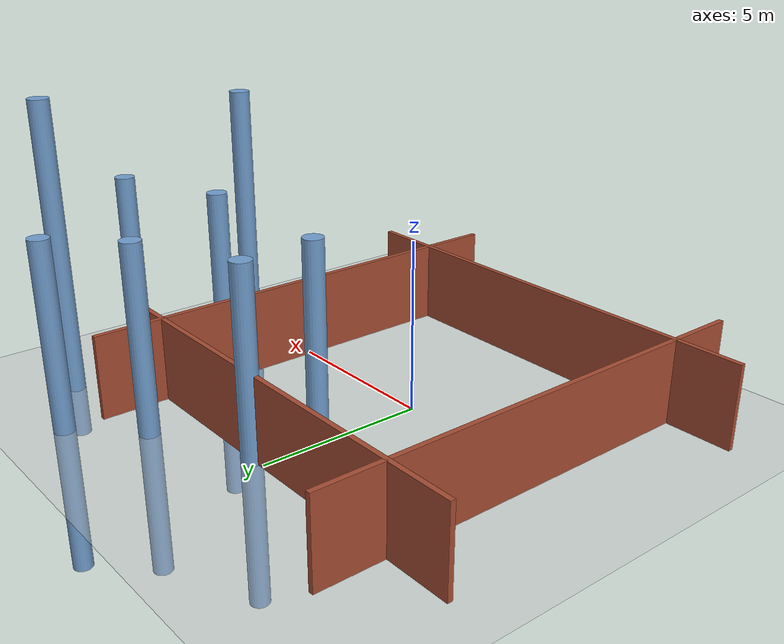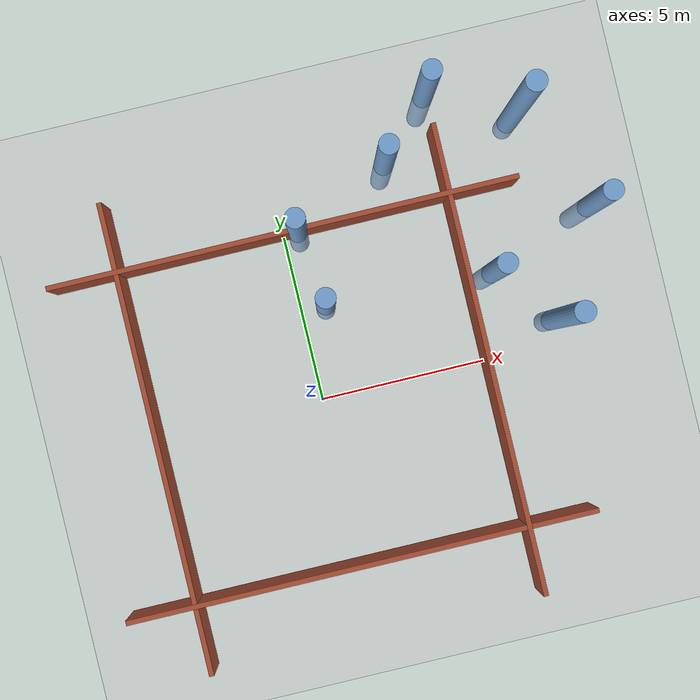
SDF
<sdf version="1.6">
 <world name="default">
  <light name="sun" type="directional">
   <pose>0 0 10 0 -0 0</pose>
   <diffuse>0.8 0.8 0.8 1</diffuse>
   <specular>0.2 0.2 0.2 1</specular>
   <attenuation>
    <range>1000</range>
    <constant>0.9</constant>
    <linear>0.01</linear>
    <quadratic>0.001</quadratic>
   </attenuation>
   <direction>-0.5 0.1 -0.9</direction>
  </light>
  <model name="ground_plane">
   <static>1</static>
   <link name="link">
    <collision name="collision">
     <geometry><plane><normal>0 0 1</normal><size>100 100</size></plane></geometry>
     <surface><friction><ode><mu>100</mu><mu2>50</mu2></ode></friction></surface>
    </collision>
    <visual name="visual">
     <cast_shadows>0</cast_shadows>
     <geometry><plane><normal>0 0 1</normal><size>100 100</size></plane></geometry>
     <material>
      <script><uri>file://media/materials/scripts/gazebo.material</uri><name>Gazebo/Grey</name></script>
     </material>
    </visual>
   </link>
  </model>
  <gravity>0 0 -9.8</gravity>
  <magnetic_field>6e-06 2.3e-05 -4.2e-05</magnetic_field>
  <atmosphere type="adiabatic"/>
  <physics name="default_physics" default="0" type="ode">
   <max_step_size>0.001</max_step_size>
   <real_time_factor>1</real_time_factor>
   <real_time_update_rate>1000</real_time_update_rate>
  </physics>
  <scene><ambient>0.4 0.4 0.4 1</ambient><background>0.7 0.7 0.7 1</background><shadows>1</shadows></scene>
  <spherical_coordinates>
   <surface_model>EARTH_WGS84</surface_model>
   <latitude_deg>0</latitude_deg>
   <longitude_deg>0</longitude_deg>
   <elevation>0</elevation>
   <heading_deg>0</heading_deg>
  </spherical_coordinates>
  <model name="blank">
   <link name="Wall_0">
    <collision name="Wall_0_Collision">
     <geometry><box><size>14.15 0.15 2.5</size></box></geometry>
     <pose>0 0 1.25 0 -0 0</pose>
    </collision>
    <visual name="Wall_0_Visual">
     <pose>0 0 1.25 0 -0 0</pose>
     <geometry><box><size>14.15 0.15 2.5</size></box></geometry>
     <material>
      <script><uri>file://media/materials/scripts/gazebo.material</uri><name>Gazebo/Bricks</name></script>
      <ambient>1 1 1 1</ambient>
     </material>
     <meta><layer>0</layer></meta>
    </visual>
    <pose>0 5 0 0 -0 0</pose>
   </link>
   <link name="Wall_1">
    <collision name="Wall_1_Collision">
     <geometry><box><size>14.15 0.15 2.5</size></box></geometry>
     <pose>0 0 1.25 0 -0 0</pose>
    </collision>
    <visual name="Wall_1_Visual">
     <pose>0 0 1.25 0 -0 0</pose>
     <geometry><box><size>14.15 0.15 2.5</size></box></geometry>
     <material>
      <script><uri>file://media/materials/scripts/gazebo.material</uri><name>Gazebo/Bricks</name></script>
      <ambient>1 1 1 1</ambient>
     </material>
     <meta><layer>0</layer></meta>
    </visual>
    <pose>5 0 0 0 -0 -1.5708</pose>
   </link>
   <link name="Wall_2">
    <collision name="Wall_2_Collision">
     <geometry><box><size>14.15 0.15 2.5</size></box></geometry>
     <pose>0 0 1.25 0 -0 0</pose>
    </collision>
    <visual name="Wall_2_Visual">
     <pose>0 0 1.25 0 -0 0</pose>
     <geometry><box><size>14.15 0.15 2.5</size></box></geometry>
     <material>
      <script><uri>file://media/materials/scripts/gazebo.material</uri><name>Gazebo/Bricks</name></script>
      <ambient>1 1 1 1</ambient>
     </material>
     <meta><layer>0</layer></meta>
    </visual>
    <pose>0 -5 0 0 -0 3.14159</pose>
   </link>
   <link name="Wall_3">
    <collision name="Wall_3_Collision">
     <geometry><box><size>14.15 0.15 2.5</size></box></geometry>
     <pose>0 0 1.25 0 -0 0</pose>
    </collision>
    <visual name="Wall_3_Visual">
     <pose>0 0 1.25 0 -0 0</pose>
     <geometry><box><size>14.15 0.15 2.5</size></box></geometry>
     <material>
      <script><uri>file://media/materials/scripts/gazebo.material</uri><name>Gazebo/Bricks</name></script>
      <ambient>1 1 1 1</ambient>
     </material>
     <meta><layer>0</layer></meta>
    </visual>
    <pose>-5 0 0 0 -0 1.5708</pose>
   </link>
   <static>1</static>
  </model>
  <model name="unit_cylinder_0_0">
   <link name="link">
    <inertial>
     <mass>1</mass>
     <inertia><ixx>0.145833</ixx><ixy>0</ixy><ixz>0</ixz><iyy>0.145833</iyy><iyz>0</iyz><izz>0.125</izz></inertia>
    </inertial>
    <pose>0 0 3 0 -0 0</pose>
    <visual name="visual">
     <geometry><cylinder><radius>0.3</radius><length>10</length></cylinder></geometry>
     <material>
      <script><name>Gazebo/Grey</name><uri>file://media/materials/scripts/gazebo.material</uri></script>
      <shader type="pixel"><normal_map>__default__</normal_map></shader>
      <ambient>0.447 0.624 0.812 1</ambient>
      <diffuse>0.7 0.7 0.7 1</diffuse>
      <specular>0.01 0.01 0.01 1</specular>
      <emissive>0 0 0 1</emissive>
     </material>
    </visual>
    <collision name="collision">
     <geometry><cylinder><radius>0.5</radius><length>1</length></cylinder></geometry>
     <surface>
      <friction>
       <ode><mu>1</mu><mu2>1</mu2><fdir1>0 0 0</fdir1><slip1>0</slip1><slip2>0</slip2></ode>
       <torsional>
        <coefficient>1</coefficient>
        <patch_radius>0</patch_radius>
        <surface_radius>0</surface_radius>
        <use_patch_radius>1</use_patch_radius>
        <ode><slip>0</slip></ode>
       </torsional>
      </friction>
      <bounce><restitution_coefficient>0</restitution_coefficient><threshold>1e+06</threshold></bounce>
      <contact>
       <collide_without_contact>0</collide_without_contact>
       <collide_without_contact_bitmask>1</collide_without_contact_bitmask>
       <collide_bitmask>1</collide_bitmask>
       <ode>
        <soft_cfm>0</soft_cfm>
        <soft_erp>0.2</soft_erp>
        <kp>1e+13</kp>
        <kd>1</kd>
        <max_vel>0.01</max_vel>
        <min_depth>0</min_depth>
       </ode>
       <bullet>
        <split_impulse>1</split_impulse>
        <split_impulse_penetration_threshold>-0.01</split_impulse_penetration_threshold>
        <soft_cfm>0</soft_cfm>
        <soft_erp>0.2</soft_erp>
        <kp>1e+13</kp>
        <kd>1</kd>
       </bullet>
      </contact>
     </surface>
    </collision>
   </link>
   <static>0</static>
   <pose>9.154016 3.783298 -2.5 0 -0 1e-06</pose>
  </model>
  <model name="unit_cylinder_0_1">
   <link name="link">
    <inertial>
     <mass>1</mass>
     <inertia><ixx>0.145833</ixx><ixy>0</ixy><ixz>0</ixz><iyy>0.145833</iyy><iyz>0</iyz><izz>0.125</izz></inertia>
    </inertial>
    <pose>0 0 3 0 -0 0</pose>
    <visual name="visual">
     <geometry><cylinder><radius>0.3</radius><length>10</length></cylinder></geometry>
     <material>
      <script><name>Gazebo/Grey</name><uri>file://media/materials/scripts/gazebo.material</uri></script>
      <shader type="pixel"><normal_map>__default__</normal_map></shader>
      <ambient>0.447 0.624 0.812 1</ambient>
      <diffuse>0.7 0.7 0.7 1</diffuse>
      <specular>0.01 0.01 0.01 1</specular>
      <emissive>0 0 0 1</emissive>
     </material>
    </visual>
    <collision name="collision">
     <geometry><cylinder><radius>0.5</radius><length>1</length></cylinder></geometry>
     <surface>
      <friction>
       <ode><mu>1</mu><mu2>1</mu2><fdir1>0 0 0</fdir1><slip1>0</slip1><slip2>0</slip2></ode>
       <torsional>
        <coefficient>1</coefficient>
        <patch_radius>0</patch_radius>
        <surface_radius>0</surface_radius>
        <use_patch_radius>1</use_patch_radius>
        <ode><slip>0</slip></ode>
       </torsional>
      </friction>
      <bounce><restitution_coefficient>0</restitution_coefficient><threshold>1e+06</threshold></bounce>
      <contact>
       <collide_without_contact>0</collide_without_contact>
       <collide_without_contact_bitmask>1</collide_without_contact_bitmask>
       <collide_bitmask>1</collide_bitmask>
       <ode>
        <soft_cfm>0</soft_cfm>
        <soft_erp>0.2</soft_erp>
        <kp>1e+13</kp>
        <kd>1</kd>
        <max_vel>0.01</max_vel>
        <min_depth>0</min_depth>
       </ode>
       <bullet>
        <split_impulse>1</split_impulse>
        <split_impulse_penetration_threshold>-0.01</split_impulse_penetration_threshold>
        <soft_cfm>0</soft_cfm>
        <soft_erp>0.2</soft_erp>
        <kp>1e+13</kp>
        <kd>1</kd>
       </bullet>
      </contact>
     </surface>
    </collision>
   </link>
   <static>0</static>
   <pose>0.749903 2.733204 -2.5 0 -0 1e-06</pose>
  </model>
  <model name="unit_cylinder_0_2">
   <link name="link">
    <inertial>
     <mass>1</mass>
     <inertia><ixx>0.145833</ixx><ixy>0</ixy><ixz>0</ixz><iyy>0.145833</iyy><iyz>0</iyz><izz>0.125</izz></inertia>
    </inertial>
    <pose>0 0 3 0 -0 0</pose>
    <visual name="visual">
     <geometry><cylinder><radius>0.3</radius><length>10</length></cylinder></geometry>
     <material>
      <script><name>Gazebo/Grey</name><uri>file://media/materials/scripts/gazebo.material</uri></script>
      <shader type="pixel"><normal_map>__default__</normal_map></shader>
      <ambient>0.447 0.624 0.812 1</ambient>
      <diffuse>0.7 0.7 0.7 1</diffuse>
      <specular>0.01 0.01 0.01 1</specular>
      <emissive>0 0 0 1</emissive>
     </material>
    </visual>
    <collision name="collision">
     <geometry><cylinder><radius>0.5</radius><length>1</length></cylinder></geometry>
     <surface>
      <friction>
       <ode><mu>1</mu><mu2>1</mu2><fdir1>0 0 0</fdir1><slip1>0</slip1><slip2>0</slip2></ode>
       <torsional>
        <coefficient>1</coefficient>
        <patch_radius>0</patch_radius>
        <surface_radius>0</surface_radius>
        <use_patch_radius>1</use_patch_radius>
        <ode><slip>0</slip></ode>
       </torsional>
      </friction>
      <bounce><restitution_coefficient>0</restitution_coefficient><threshold>1e+06</threshold></bounce>
      <contact>
       <collide_without_contact>0</collide_without_contact>
       <collide_without_contact_bitmask>1</collide_without_contact_bitmask>
       <collide_bitmask>1</collide_bitmask>
       <ode>
        <soft_cfm>0</soft_cfm>
        <soft_erp>0.2</soft_erp>
        <kp>1e+13</kp>
        <kd>1</kd>
        <max_vel>0.01</max_vel>
        <min_depth>0</min_depth>
       </ode>
       <bullet>
        <split_impulse>1</split_impulse>
        <split_impulse_penetration_threshold>-0.01</split_impulse_penetration_threshold>
        <soft_cfm>0</soft_cfm>
        <soft_erp>0.2</soft_erp>
        <kp>1e+13</kp>
        <kd>1</kd>
       </bullet>
      </contact>
     </surface>
    </collision>
   </link>
   <static>0</static>
   <pose>7.370728 6.828141 0.5 0 -0 1e-06</pose>
  </model>
  <model name="unit_cylinder_0_3">
   <link name="link">
    <inertial>
     <mass>1</mass>
     <inertia><ixx>0.145833</ixx><ixy>0</ixy><ixz>0</ixz><iyy>0.145833</iyy><iyz>0</iyz><izz>0.125</izz></inertia>
    </inertial>
    <pose>0 0 3 0 -0 0</pose>
    <visual name="visual">
     <geometry><cylinder><radius>0.3</radius><length>10</length></cylinder></geometry>
     <material>
      <script><name>Gazebo/Grey</name><uri>file://media/materials/scripts/gazebo.material</uri></script>
      <shader type="pixel"><normal_map>__default__</normal_map></shader>
      <ambient>0.447 0.624 0.812 1</ambient>
      <diffuse>0.7 0.7 0.7 1</diffuse>
      <specular>0.01 0.01 0.01 1</specular>
      <emissive>0 0 0 1</emissive>
     </material>
    </visual>
    <collision name="collision">
     <geometry><cylinder><radius>0.5</radius><length>1</length></cylinder></geometry>
     <surface>
      <friction>
       <ode><mu>1</mu><mu2>1</mu2><fdir1>0 0 0</fdir1><slip1>0</slip1><slip2>0</slip2></ode>
       <torsional>
        <coefficient>1</coefficient>
        <patch_radius>0</patch_radius>
        <surface_radius>0</surface_radius>
        <use_patch_radius>1</use_patch_radius>
        <ode><slip>0</slip></ode>
       </torsional>
      </friction>
      <bounce><restitution_coefficient>0</restitution_coefficient><threshold>1e+06</threshold></bounce>
      <contact>
       <collide_without_contact>0</collide_without_contact>
       <collide_without_contact_bitmask>1</collide_without_contact_bitmask>
       <collide_bitmask>1</collide_bitmask>
       <ode>
        <soft_cfm>0</soft_cfm>
        <soft_erp>0.2</soft_erp>
        <kp>1e+13</kp>
        <kd>1</kd>
        <max_vel>0.01</max_vel>
        <min_depth>0</min_depth>
       </ode>
       <bullet>
        <split_impulse>1</split_impulse>
        <split_impulse_penetration_threshold>-0.01</split_impulse_penetration_threshold>
        <soft_cfm>0</soft_cfm>
        <soft_erp>0.2</soft_erp>
        <kp>1e+13</kp>
        <kd>1</kd>
       </bullet>
      </contact>
     </surface>
    </collision>
   </link>
   <static>0</static>
   <pose>0.439532 5.070755 -2.5 0 -0 1e-06</pose>
  </model>
  <model name="unit_cylinder_0_4">
   <link name="link">
    <inertial>
     <mass>1</mass>
     <inertia><ixx>0.145833</ixx><ixy>0</ixy><ixz>0</ixz><iyy>0.145833</iyy><iyz>0</iyz><izz>0.125</izz></inertia>
    </inertial>
    <pose>0 0 3 0 -0 0</pose>
    <visual name="visual">
     <geometry><cylinder><radius>0.3</radius><length>10</length></cylinder></geometry>
     <material>
      <script><name>Gazebo/Grey</name><uri>file://media/materials/scripts/gazebo.material</uri></script>
      <shader type="pixel"><normal_map>__default__</normal_map></shader>
      <ambient>0.447 0.624 0.812 1</ambient>
      <diffuse>0.7 0.7 0.7 1</diffuse>
      <specular>0.01 0.01 0.01 1</specular>
      <emissive>0 0 0 1</emissive>
     </material>
    </visual>
    <collision name="collision">
     <geometry><cylinder><radius>0.5</radius><length>1</length></cylinder></geometry>
     <surface>
      <friction>
       <ode><mu>1</mu><mu2>1</mu2><fdir1>0 0 0</fdir1><slip1>0</slip1><slip2>0</slip2></ode>
       <torsional>
        <coefficient>1</coefficient>
        <patch_radius>0</patch_radius>
        <surface_radius>0</surface_radius>
        <use_patch_radius>1</use_patch_radius>
        <ode><slip>0</slip></ode>
       </torsional>
      </friction>
      <bounce><restitution_coefficient>0</restitution_coefficient><threshold>1e+06</threshold></bounce>
      <contact>
       <collide_without_contact>0</collide_without_contact>
       <collide_without_contact_bitmask>1</collide_without_contact_bitmask>
       <collide_bitmask>1</collide_bitmask>
       <ode>
        <soft_cfm>0</soft_cfm>
        <soft_erp>0.2</soft_erp>
        <kp>1e+13</kp>
        <kd>1</kd>
        <max_vel>0.01</max_vel>
        <min_depth>0</min_depth>
       </ode>
       <bullet>
        <split_impulse>1</split_impulse>
        <split_impulse_penetration_threshold>-0.01</split_impulse_penetration_threshold>
        <soft_cfm>0</soft_cfm>
        <soft_erp>0.2</soft_erp>
        <kp>1e+13</kp>
        <kd>1</kd>
       </bullet>
      </contact>
     </surface>
    </collision>
   </link>
   <static>0</static>
   <pose>5.063684 8.167870 -2.5 0 -0 1e-06</pose>
  </model>
  <model name="unit_cylinder_0_6_clone_clone">
   <link name="link">
    <inertial>
     <mass>1</mass>
     <inertia><ixx>0.145833</ixx><ixy>0</ixy><ixz>0</ixz><iyy>0.145833</iyy><iyz>0</iyz><izz>0.125</izz></inertia>
    </inertial>
    <pose>0 0 3 0 -0 0</pose>
    <visual name="visual">
     <geometry><cylinder><radius>0.3</radius><length>10</length></cylinder></geometry>
     <material>
      <script><name>Gazebo/Grey</name><uri>file://media/materials/scripts/gazebo.material</uri></script>
      <shader type="pixel"><normal_map>__default__</normal_map></shader>
      <ambient>0.447 0.624 0.812 1</ambient>
      <diffuse>0.7 0.7 0.7 1</diffuse>
      <specular>0.01 0.01 0.01 1</specular>
      <emissive>0 0 0 1</emissive>
     </material>
    </visual>
    <collision name="collision">
     <geometry><cylinder><radius>0.5</radius><length>1</length></cylinder></geometry>
     <surface>
      <friction>
       <ode><mu>1</mu><mu2>1</mu2><fdir1>0 0 0</fdir1><slip1>0</slip1><slip2>0</slip2></ode>
       <torsional>
        <coefficient>1</coefficient>
        <patch_radius>0</patch_radius>
        <surface_radius>0</surface_radius>
        <use_patch_radius>1</use_patch_radius>
        <ode><slip>0</slip></ode>
       </torsional>
      </friction>
      <bounce><restitution_coefficient>0</restitution_coefficient><threshold>1e+06</threshold></bounce>
      <contact>
       <collide_without_contact>0</collide_without_contact>
       <collide_without_contact_bitmask>1</collide_without_contact_bitmask>
       <collide_bitmask>1</collide_bitmask>
       <ode>
        <soft_cfm>0</soft_cfm>
        <soft_erp>0.2</soft_erp>
        <kp>1e+13</kp>
        <kd>1</kd>
        <max_vel>0.01</max_vel>
        <min_depth>0</min_depth>
       </ode>
       <bullet>
        <split_impulse>1</split_impulse>
        <split_impulse_penetration_threshold>-0.01</split_impulse_penetration_threshold>
        <soft_cfm>0</soft_cfm>
        <soft_erp>0.2</soft_erp>
        <kp>1e+13</kp>
        <kd>1</kd>
       </bullet>
      </contact>
     </surface>
    </collision>
   </link>
   <static>0</static>
   <pose>3.436346 6.445625 -2.5 0 -0 1e-06</pose>
  </model>
  <model name="unit_cylinder_0_6_clone_0">
   <link name="link">
    <inertial>
     <mass>1</mass>
     <inertia><ixx>0.145833</ixx><ixy>0</ixy><ixz>0</ixz><iyy>0.145833</iyy><iyz>0</iyz><izz>0.125</izz></inertia>
    </inertial>
    <pose>0 0 3 0 -0 0</pose>
    <visual name="visual">
     <geometry><cylinder><radius>0.3</radius><length>10</length></cylinder></geometry>
     <material>
      <script><name>Gazebo/Grey</name><uri>file://media/materials/scripts/gazebo.material</uri></script>
      <shader type="pixel"><normal_map>__default__</normal_map></shader>
      <ambient>0.447 0.624 0.812 1</ambient>
      <diffuse>0.7 0.7 0.7 1</diffuse>
      <specular>0.01 0.01 0.01 1</specular>
      <emissive>0 0 0 1</emissive>
     </material>
    </visual>
    <collision name="collision">
     <geometry><cylinder><radius>0.5</radius><length>1</length></cylinder></geometry>
     <surface>
      <friction>
       <ode><mu>1</mu><mu2>1</mu2><fdir1>0 0 0</fdir1><slip1>0</slip1><slip2>0</slip2></ode>
       <torsional>
        <coefficient>1</coefficient>
        <patch_radius>0</patch_radius>
        <surface_radius>0</surface_radius>
        <use_patch_radius>1</use_patch_radius>
        <ode><slip>0</slip></ode>
       </torsional>
      </friction>
      <bounce><restitution_coefficient>0</restitution_coefficient><threshold>1e+06</threshold></bounce>
      <contact>
       <collide_without_contact>0</collide_without_contact>
       <collide_without_contact_bitmask>1</collide_without_contact_bitmask>
       <collide_bitmask>1</collide_bitmask>
       <ode>
        <soft_cfm>0</soft_cfm>
        <soft_erp>0.2</soft_erp>
        <kp>1e+13</kp>
        <kd>1</kd>
        <max_vel>0.01</max_vel>
        <min_depth>0</min_depth>
       </ode>
       <bullet>
        <split_impulse>1</split_impulse>
        <split_impulse_penetration_threshold>-0.01</split_impulse_penetration_threshold>
        <soft_cfm>0</soft_cfm>
        <soft_erp>0.2</soft_erp>
        <kp>1e+13</kp>
        <kd>1</kd>
       </bullet>
      </contact>
     </surface>
    </collision>
   </link>
   <static>0</static>
   <pose>5.857032 2.506081 -2.50015 1.7e-05 1.7e-05 0</pose>
  </model>
  <model name="unit_cylinder_0_2_clone">
   <link name="link">
    <inertial>
     <mass>1</mass>
     <inertia><ixx>0.145833</ixx><ixy>0</ixy><ixz>0</ixz><iyy>0.145833</iyy><iyz>0</iyz><izz>0.125</izz></inertia>
    </inertial>
    <pose>0 0 3 0 -0 0</pose>
    <visual name="visual">
     <geometry><cylinder><radius>0.3</radius><length>10</length></cylinder></geometry>
     <material>
      <script><name>Gazebo/Grey</name><uri>file://media/materials/scripts/gazebo.material</uri></script>
      <shader type="pixel"><normal_map>__default__</normal_map></shader>
      <ambient>0.447 0.624 0.812 1</ambient>
      <diffuse>0.7 0.7 0.7 1</diffuse>
      <specular>0.01 0.01 0.01 1</specular>
      <emissive>0 0 0 1</emissive>
     </material>
    </visual>
    <collision name="collision">
     <geometry><cylinder><radius>0.5</radius><length>1</length></cylinder></geometry>
     <surface>
      <friction>
       <ode><mu>1</mu><mu2>1</mu2><fdir1>0 0 0</fdir1><slip1>0</slip1><slip2>0</slip2></ode>
       <torsional>
        <coefficient>1</coefficient>
        <patch_radius>0</patch_radius>
        <surface_radius>0</surface_radius>
        <use_patch_radius>1</use_patch_radius>
        <ode><slip>0</slip></ode>
       </torsional>
      </friction>
      <bounce><restitution_coefficient>0</restitution_coefficient><threshold>1e+06</threshold></bounce>
      <contact>
       <collide_without_contact>0</collide_without_contact>
       <collide_without_contact_bitmask>1</collide_without_contact_bitmask>
       <collide_bitmask>1</collide_bitmask>
       <ode>
        <soft_cfm>0</soft_cfm>
        <soft_erp>0.2</soft_erp>
        <kp>1e+13</kp>
        <kd>1</kd>
        <max_vel>0.01</max_vel>
        <min_depth>0</min_depth>
       </ode>
       <bullet>
        <split_impulse>1</split_impulse>
        <split_impulse_penetration_threshold>-0.01</split_impulse_penetration_threshold>
        <soft_cfm>0</soft_cfm>
        <soft_erp>0.2</soft_erp>
        <kp>1e+13</kp>
        <kd>1</kd>
       </bullet>
      </contact>
     </surface>
    </collision>
   </link>
   <static>0</static>
   <pose>7.277408 0.703880 0 0 -0 0</pose>
  </model>
 </world>
</sdf>
